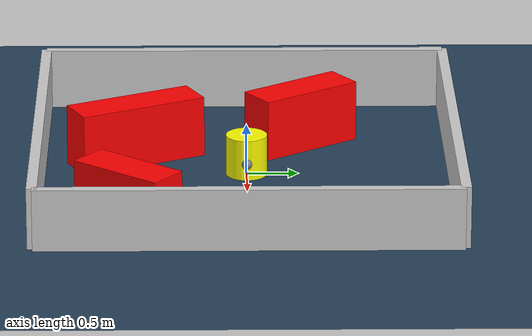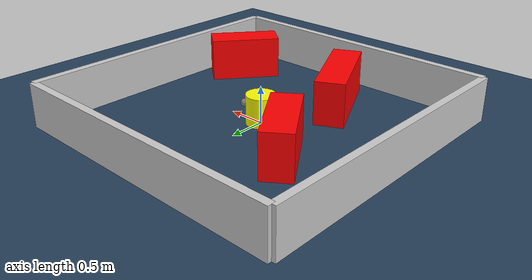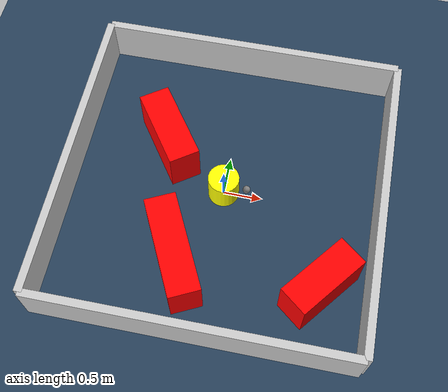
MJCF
<?xml version="1.0" ?>
<mujoco model="generated_environment">
  <option timestep="0.01" integrator="RK4" cone="elliptic"/>
  <default>
    <geom density="1"/>
  </default>
  <asset>
    <texture builtin="gradient" height="3072" rgb1="0.3 0.5 0.7" rgb2="0 0 0" type="skybox" width="512"/>
    <texture builtin="checker" height="300" mark="edge" markrgb="0.8 0.8 0.8" name="groundplane" rgb1="0.2 0.3 0.4" rgb2="0.1 0.2 0.3" type="2d" width="300"/>
    <material name="groundplane" reflectance="0.2" texrepeat="5 5" texture="groundplane" texuniform="true"/>
    <material name="robot" rgba="0.0 1.0 0.0 1"/>
  </asset>
  <worldbody>
    <light dir="0 0 -1" directional="true" pos="0 0 1.5"/>
    <geom condim="4" friction="1.0 0.005 0.001" material="groundplane" name="floor" size="0 0 0.05" type="plane"/>
    <body name="walls">
      <geom name="wall_1" condim="4" pos="-2.0 0.0 0.3" rgba="0.800000011920929 0.800000011920929 0.800000011920929 1.0" size="0.05 2.0 0.3" type="box"/>
      <geom name="wall_2" condim="4" pos="2.0 0.0 0.3" rgba="0.800000011920929 0.800000011920929 0.800000011920929 1.0" size="0.05 2.0 0.3" type="box"/>
      <geom name="wall_3" condim="4" pos="0.0 -2.0 0.3" rgba="0.800000011920929 0.800000011920929 0.800000011920929 1.0" size="2.0 0.05 0.3" type="box"/>
      <geom name="wall_4" condim="4" pos="0.0 2.0 0.3" rgba="0.800000011920929 0.800000011920929 0.800000011920929 1.0" size="2.0 0.05 0.3" type="box"/>
    </body>
    <body name="robot">
      <joint name="joint_x" type="slide" pos="0 0 0" axis="1 0 0"/>
      <joint name="joint_y" type="slide" pos="0 0 0" axis="0 1 0"/>
      <geom name="robot" type="sphere" pos="0.3 0.0 0.2" size="0.05" mass="5." friction="1.0 0.005 0.0001" condim="4" rgba="0.5 0.5 0.5 1.0"/>
      <site name="sensor_ball"/>
    </body>
    <body name="obstacle_movable_1">
      <geom name="obstacle_movable_1" condim="4" pos="0.0 0.0 0.2" euler="0 0 0.0" friction="1.0 0.005 0.001" rgba="1.0 1.0 0.0 1.0" size="0.2 0.2 0.0" type="cylinder" mass="0.1"/>
      <joint type="free"/>
    </body>
    <body name="obstacle_2_static">
      <geom name="obstacle_2_static" condim="4" pos="1.3980151672853631 -1.1218330812018986 0.3" euler="0 0 231.43676833706724" friction="1.0 0.005 0.001" rgba="1 0 0 1" size="0.48944581925602804 0.2 0.3" type="box"/>
    </body>
    <body name="obstacle_3_static">
      <geom name="obstacle_3_static" condim="4" pos="-0.8296051311918851 0.5411131058159164 0.3" euler="0 0 125.02074109209242" friction="1.0 0.005 0.001" rgba="1 0 0 1" size="0.5362104835804505 0.2 0.3" type="box"/>
    </body>
    <body name="obstacle_4_static">
      <geom name="obstacle_4_static" condim="4" pos="-0.41159695444459854 -1.0763752606254384 0.3" euler="0 0 296.416281481932" friction="1.0 0.005 0.001" rgba="1 0 0 1" size="0.6472651439144019 0.2 0.3" type="box"/>
    </body>
  </worldbody>
  <actuator>
    <motor name="actuator_x" joint="joint_x" gear="1" ctrlrange="-1 1"/>
    <motor name="actuator_y" joint="joint_y" gear="1" ctrlrange="-1 1"/>
  </actuator>
</mujoco>
